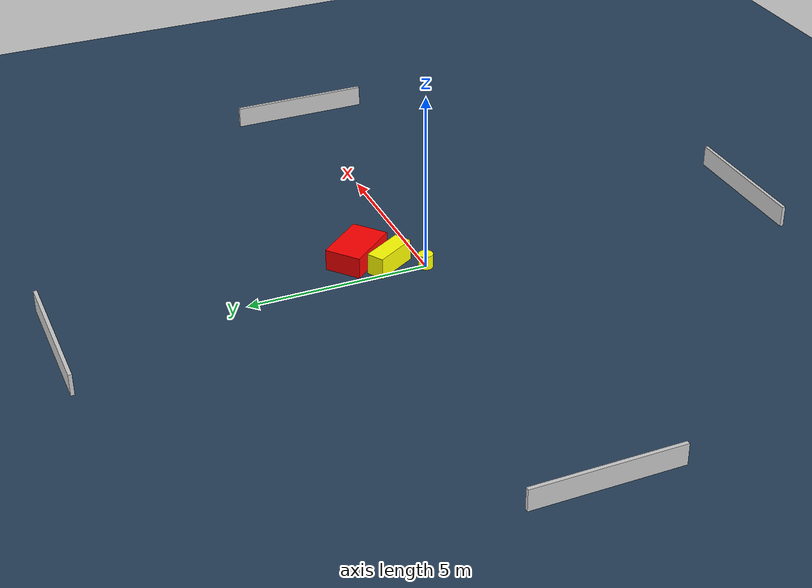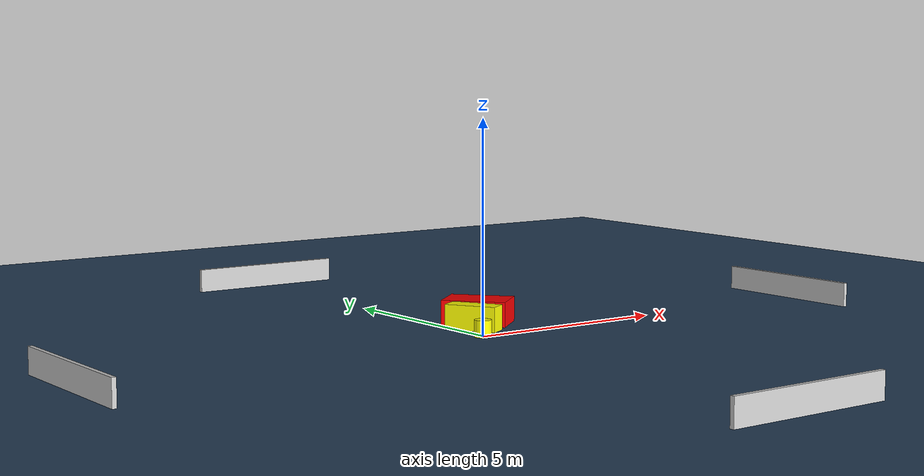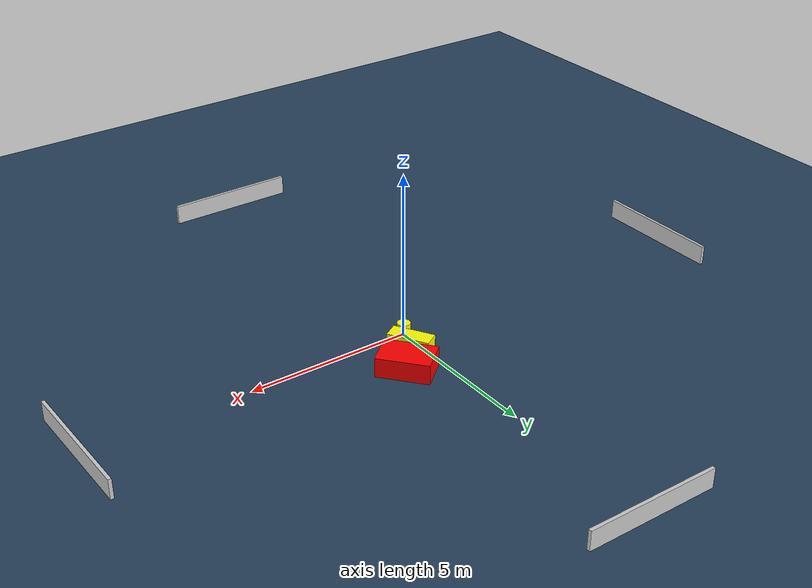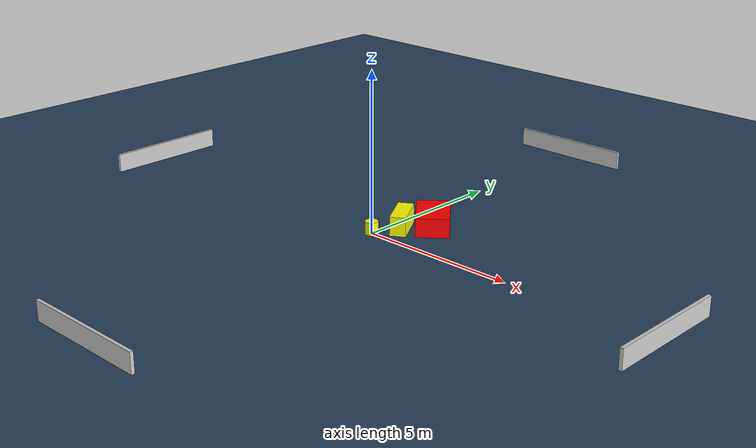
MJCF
<?xml version="1.0" ?>
<mujoco model="generated_environment">
  <option timestep="0.01" integrator="RK4" cone="elliptic"/>
  <default>
    <geom density="1"/>
  </default>
  <asset>
    <texture builtin="gradient" height="3072" name="skybox" rgb1="0.3 0.5 0.7" rgb2="0 0 0" type="skybox" width="512"/>
    <texture builtin="checker" height="300" name="groundplane" rgb1="0.2 0.3 0.4" rgb2="0.1 0.2 0.3" type="2d" width="300"/>
    <material name="groundplane" reflectance="0.2" texrepeat="5 5" texture="groundplane"/>
  </asset>
  <worldbody>
    <light dir="0 0 -1" directional="true" pos="0 0 1.5"/>
    <geom condim="3" friction="0.5 0.005 0.001" material="groundplane" name="floor" pos="0 0 0" size="0 0 0.05" type="plane"/>
    <body name="walls">
      <geom name="wall_1" condim="4" pos="-10.0 0.0 0.3" rgba="0.800000011920929 0.800000011920929 0.800000011920929 1.0" size="0.05 2.0 0.3" type="box"/>
      <geom name="wall_2" condim="4" pos="10.0 0.0 0.3" rgba="0.800000011920929 0.800000011920929 0.800000011920929 1.0" size="0.05 2.0 0.3" type="box"/>
      <geom name="wall_3" condim="4" pos="0.0 -10.0 0.3" rgba="0.800000011920929 0.800000011920929 0.800000011920929 1.0" size="2.0 0.05 0.3" type="box"/>
      <geom name="wall_4" condim="4" pos="0.0 10.0 0.3" rgba="0.800000011920929 0.800000011920929 0.800000011920929 1.0" size="2.0 0.05 0.3" type="box"/>
    </body>
    <body name="robot">
      <joint name="joint_x" type="slide" pos="0 0 0" axis="1 0 0"/>
      <joint name="joint_y" type="slide" pos="0 0 0" axis="0 1 0"/>
      <geom name="robot" type="cylinder" pos="0.0 0.0 0.2" size="0.2 0.2 0.0" mass="5.0" friction="1.0 0.005 0.0001" condim="4" rgba="1.0 1.0 0.0 1.0"/>
    </body>
    <body name="obstacle_1_movable">
      <geom name="obstacle_1_movable" condim="4" pos="0.3934353934034383 0.8943599251810328 0.3" euler="0 0 30.897020054249996" friction="0.0 0.005 0.001" rgba="1.0 1.0 0.0 1.0" size="0.2467168873600138 0.6282075312378183 0.3" type="box" mass="0.1"/>
      <joint type="free"/>
    </body>
    <body name="obstacle_2_static">
      <geom name="obstacle_2_static" condim="4" pos="1.026449876133802 1.5816772476828382 0.3" euler="0 0 309.96688133203384" friction="0.0 0.005 0.001" rgba="1.0 0.0 0.0 1.0" size="0.7797129498779325 0.5135997429239292 0.3" type="box"/>
    </body>
  </worldbody>
  <actuator>
    <motor name="actuator_x" joint="joint_x" gear="1" ctrlrange="-1 1"/>
    <motor name="actuator_y" joint="joint_y" gear="1" ctrlrange="-1 1"/>
  </actuator>
</mujoco>
